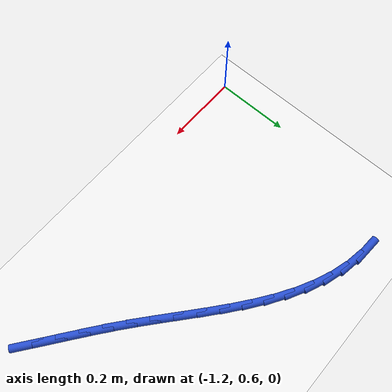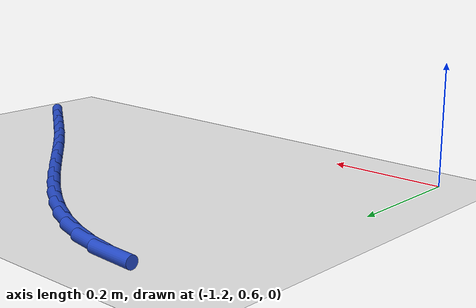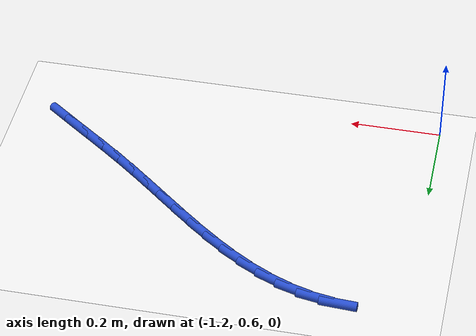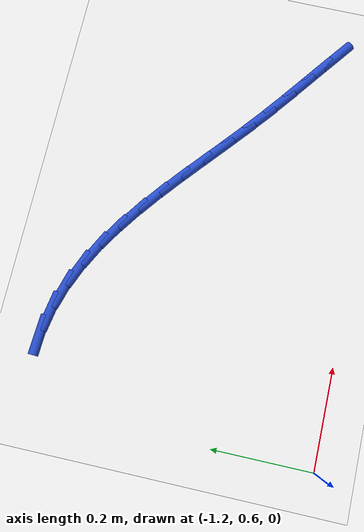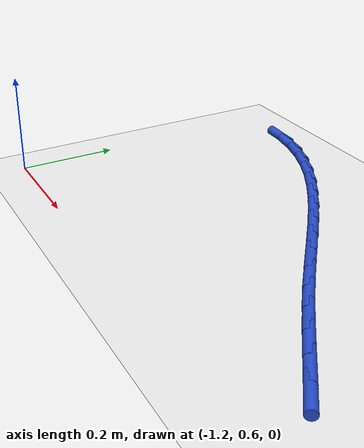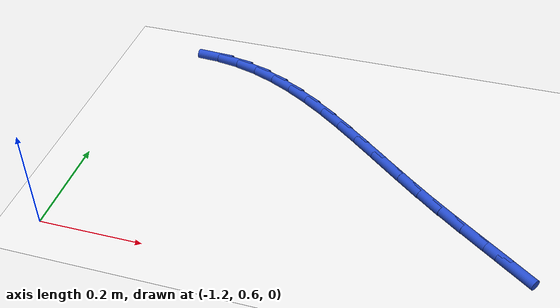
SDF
<sdf version="1.6">
 <world name="default">
  <model name="ground_plane">
   <static>1</static>
   <link name="link">
    <collision name="collision">
     <geometry><plane><normal>0 0 1</normal><size>100 100</size></plane></geometry>
     <surface><friction><ode><mu>100</mu><mu2>50</mu2></ode></friction></surface>
    </collision>
    <visual name="visual">
     <cast_shadows>0</cast_shadows>
     <geometry><plane><normal>0 0 1</normal><size>100 100</size></plane></geometry>
     <material>
      <script><uri>file://media/materials/scripts/gazebo.material</uri><name>Gazebo/WhiteGlow</name></script>
     </material>
    </visual>
   </link>
  </model>
  <model name="line">
   <link name="link_16">
    <pose>-0.36204301629107377 0.7102329599965695 0.01 0 1.57 -0.6438675257675716</pose>
    <collision name="collision">
     <geometry><cylinder><radius>0.01</radius><length>0.08</length></cylinder></geometry>
    </collision>
    <visual name="visual">
     <material>
      <script><name>Gazebo/Blue</name><uri>file://media/materials/scripts/gazebo.material</uri></script>
     </material>
     <geometry><cylinder><radius>0.01</radius><length>0.08</length></cylinder></geometry>
    </visual>
   </link>
   <link name="link_17">
    <pose>-0.40484637032103254 0.7423599883119898 0.01 0 1.57 -0.6395925681207827</pose>
    <collision name="collision">
     <geometry><cylinder><radius>0.01</radius><length>0.08</length></cylinder></geometry>
    </collision>
    <visual name="visual">
     <material>
      <script><name>Gazebo/Blue</name><uri>file://media/materials/scripts/gazebo.material</uri></script>
     </material>
     <geometry><cylinder><radius>0.01</radius><length>0.08</length></cylinder></geometry>
    </visual>
   </link>
   <link name="link_18">
    <pose>-0.44819767671524363 0.7746094900522471 0.01 0 1.57 -0.645115655191261</pose>
    <collision name="collision">
     <geometry><cylinder><radius>0.01</radius><length>0.08</length></cylinder></geometry>
    </collision>
    <visual name="visual">
     <material>
      <script><name>Gazebo/Blue</name><uri>file://media/materials/scripts/gazebo.material</uri></script>
     </material>
     <geometry><cylinder><radius>0.01</radius><length>0.08</length></cylinder></geometry>
    </visual>
   </link>
   <link name="link_19">
    <pose>-0.49171524248309745 0.8073575805864145 0.01 0 1.57 -0.6602276353406985</pose>
    <collision name="collision">
     <geometry><cylinder><radius>0.01</radius><length>0.08</length></cylinder></geometry>
    </collision>
    <visual name="visual">
     <material>
      <script><name>Gazebo/Blue</name><uri>file://media/materials/scripts/gazebo.material</uri></script>
     </material>
     <geometry><cylinder><radius>0.01</radius><length>0.08</length></cylinder></geometry>
    </visual>
   </link>
   <link name="link_20">
    <pose>-0.5350173746339851 0.8409803752835663 0.01 0 1.57 -0.6825616787961785</pose>
    <collision name="collision">
     <geometry><cylinder><radius>0.01</radius><length>0.08</length></cylinder></geometry>
    </collision>
    <visual name="visual">
     <material>
      <script><name>Gazebo/Blue</name><uri>file://media/materials/scripts/gazebo.material</uri></script>
     </material>
     <geometry><cylinder><radius>0.01</radius><length>0.08</length></cylinder></geometry>
    </visual>
   </link>
   <link name="link_21">
    <pose>-0.5777851315959507 0.8757465853649798 0.01 0 1.57 -0.6985630996536655</pose>
    <collision name="collision">
     <geometry><cylinder><radius>0.01</radius><length>0.08</length></cylinder></geometry>
    </collision>
    <visual name="visual">
     <material>
      <script><name>Gazebo/Blue</name><uri>file://media/materials/scripts/gazebo.material</uri></script>
     </material>
     <geometry><cylinder><radius>0.01</radius><length>0.08</length></cylinder></geometry>
    </visual>
   </link>
   <link name="link_22">
    <pose>-0.6200825438694253 0.9112694342566343 0.01 0 1.57 -0.703322475787765</pose>
    <collision name="collision">
     <geometry><cylinder><radius>0.01</radius><length>0.08</length></cylinder></geometry>
    </collision>
    <visual name="visual">
     <material>
      <script><name>Gazebo/Blue</name><uri>file://media/materials/scripts/gazebo.material</uri></script>
     </material>
     <geometry><cylinder><radius>0.01</radius><length>0.08</length></cylinder></geometry>
    </visual>
   </link>
   <link name="link_23">
    <pose>-0.6621180932448497 0.946914905273693 0.01 0 1.57 -0.6968188059989411</pose>
    <collision name="collision">
     <geometry><cylinder><radius>0.01</radius><length>0.08</length></cylinder></geometry>
    </collision>
    <visual name="visual">
     <material>
      <script><name>Gazebo/Blue</name><uri>file://media/materials/scripts/gazebo.material</uri></script>
     </material>
     <geometry><cylinder><radius>0.01</radius><length>0.08</length></cylinder></geometry>
    </visual>
   </link>
   <link name="link_24">
    <pose>-0.7041005273473114 0.9820485267337412 0.01 0 1.57 -0.6787342199502959</pose>
    <collision name="collision">
     <geometry><cylinder><radius>0.01</radius><length>0.08</length></cylinder></geometry>
    </collision>
    <visual name="visual">
     <material>
      <script><name>Gazebo/Blue</name><uri>file://media/materials/scripts/gazebo.material</uri></script>
     </material>
     <geometry><cylinder><radius>0.01</radius><length>0.08</length></cylinder></geometry>
    </visual>
   </link>
   <link name="link_25">
    <pose>-0.7462385938018973 1.0160358269543621 0.01 0 1.57 -0.6484468484780594</pose>
    <collision name="collision">
     <geometry><cylinder><radius>0.01</radius><length>0.08</length></cylinder></geometry>
    </collision>
    <visual name="visual">
     <material>
      <script><name>Gazebo/Blue</name><uri>file://media/materials/scripts/gazebo.material</uri></script>
     </material>
     <geometry><cylinder><radius>0.01</radius><length>0.08</length></cylinder></geometry>
    </visual>
   </link>
   <link name="link_26">
    <pose>-0.7887410402336944 1.0482423342531408 0.01 0 1.57 -0.6050688641685725</pose>
    <collision name="collision">
     <geometry><cylinder><radius>0.01</radius><length>0.08</length></cylinder></geometry>
    </collision>
    <visual name="visual">
     <material>
      <script><name>Gazebo/Blue</name><uri>file://media/materials/scripts/gazebo.material</uri></script>
     </material>
     <geometry><cylinder><radius>0.01</radius><length>0.08</length></cylinder></geometry>
    </visual>
   </link>
   <link name="link_27">
    <pose>-0.8318166142677895 1.0780335769476599 0.01 0 1.57 -0.5475482622455539</pose>
    <collision name="collision">
     <geometry><cylinder><radius>0.01</radius><length>0.08</length></cylinder></geometry>
    </collision>
    <visual name="visual">
     <material>
      <script><name>Gazebo/Blue</name><uri>file://media/materials/scripts/gazebo.material</uri></script>
     </material>
     <geometry><cylinder><radius>0.01</radius><length>0.08</length></cylinder></geometry>
    </visual>
   </link>
   <link name="link_28">
    <pose>-0.8756740635292699 1.1047750833555043 0.01 0 1.57 -0.4748798292363643</pose>
    <collision name="collision">
     <geometry><cylinder><radius>0.01</radius><length>0.08</length></cylinder></geometry>
    </collision>
    <visual name="visual">
     <material>
      <script><name>Gazebo/Blue</name><uri>file://media/materials/scripts/gazebo.material</uri></script>
     </material>
     <geometry><cylinder><radius>0.01</radius><length>0.08</length></cylinder></geometry>
    </visual>
   </link>
   <link name="link_29">
    <pose>-0.9205221356432226 1.1278323817942584 0.01 0 1.57 -0.38647613244065</pose>
    <collision name="collision">
     <geometry><cylinder><radius>0.01</radius><length>0.08</length></cylinder></geometry>
    </collision>
    <visual name="visual">
     <material>
      <script><name>Gazebo/Blue</name><uri>file://media/materials/scripts/gazebo.material</uri></script>
     </material>
     <geometry><cylinder><radius>0.01</radius><length>0.08</length></cylinder></geometry>
    </visual>
   </link>
   <link name="link_30">
    <pose>-0.966569578234735 1.1465710005815055 0.01 0 1.57 -0.2827113254127379</pose>
    <collision name="collision">
     <geometry><cylinder><radius>0.01</radius><length>0.08</length></cylinder></geometry>
    </collision>
    <visual name="visual">
     <material>
      <script><name>Gazebo/Blue</name><uri>file://media/materials/scripts/gazebo.material</uri></script>
     </material>
     <geometry><cylinder><radius>0.01</radius><length>0.08</length></cylinder></geometry>
    </visual>
   </link>
   <link name="link_31">
    <pose>-1.0140251389288935 1.16035646803483 0.01 0 1.57 -0.16708937930662637</pose>
    <collision name="collision">
     <geometry><cylinder><radius>0.01</radius><length>0.08</length></cylinder></geometry>
    </collision>
    <visual name="visual">
     <material>
      <script><name>Gazebo/Blue</name><uri>file://media/materials/scripts/gazebo.material</uri></script>
     </material>
     <geometry><cylinder><radius>0.01</radius><length>0.08</length></cylinder></geometry>
    </visual>
   </link>
   <link name="link_32">
    <pose>-1.0630580476207343 1.1686264527941408 0.01 0 1.57 -0.056248295786296344</pose>
    <collision name="collision">
     <geometry><cylinder><radius>0.01</radius><length>0.08</length></cylinder></geometry>
    </collision>
    <visual name="visual">
     <material>
      <script><name>Gazebo/Blue</name><uri>file://media/materials/scripts/gazebo.material</uri></script>
     </material>
     <geometry><cylinder><radius>0.01</radius><length>0.08</length></cylinder></geometry>
    </visual>
   </link>
  </model>
 </world>
</sdf>
